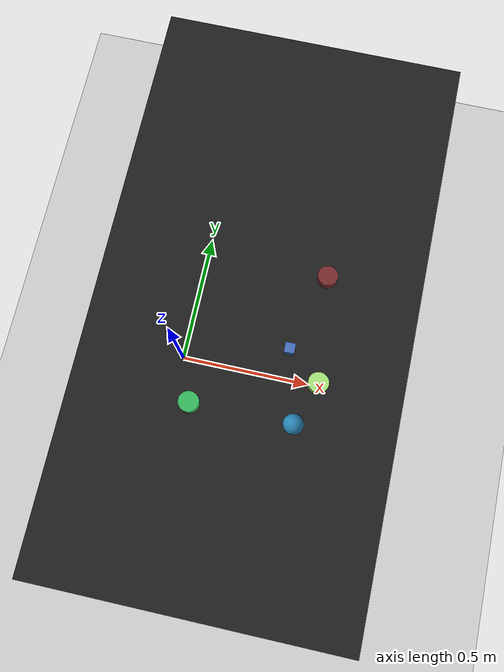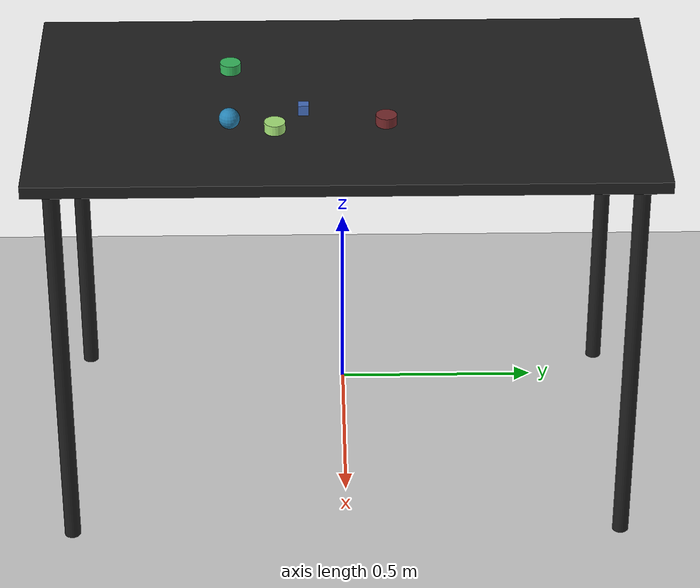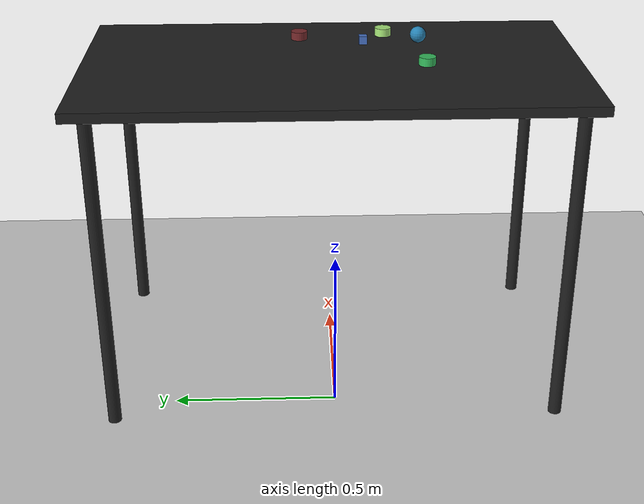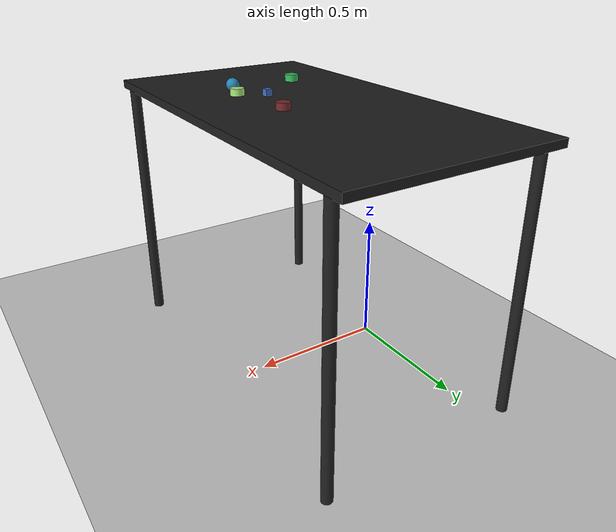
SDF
<?xml version="1.0" ?>
<sdf version="1.6">
  <world name="arm_world">
    <plugin filename="gz-sim-physics-system" name="gz::sim::systems::Physics">
      <engine>
        <filename>libgz-physics-bullet-featherstone-plugin.so</filename>
      </engine>
    </plugin>
    <plugin filename="gz-sim-user-commands-system" name="gz::sim::systems::UserCommands"/>
    <plugin filename="gz-sim-scene-broadcaster-system" name="gz::sim::systems::SceneBroadcaster"/>
    <plugin filename="gz-sim-sensors-system" name="gz::sim::systems::Sensors">
      <render_engine>ogre2</render_engine>
    </plugin>
    <gravity>0.0 0.0 -9.8</gravity>
    <scene>
      <shadows>false</shadows>
    </scene>
    <gui>
      <camera name="user_camera">
        <pose>0.75 -0.75 1.4 0 0.29 2.21</pose>
      </camera>
    </gui>
    <include>
      <uri>https://fuel.gazebosim.org/1.0/OpenRobotics/models/Sun</uri>
    </include>
    <model name="table">
      <static>true</static>
      <include>
        <uri>model://table</uri>
      </include>
      <pose>0.29 0 0 0 0 1.5708</pose>
    </model>
    <model name="ground_plane">
      <static>true</static>
      <link name="link">
        <collision name="collision">
          <geometry>
            <plane>
              <normal>0 0 1</normal>
            </plane>
          </geometry>
          <surface>
            <friction>
              <ode>
                <mu>1.0</mu>
                <mu2>1.0</mu2>
              </ode>
            </friction>
          </surface>
        </collision>
        <visual name="visual">
          <geometry>
            <plane>
              <normal>0 0 1</normal>
              <size>100 100</size>
            </plane>
          </geometry>
          <material>
            <ambient>0.8 0.8 0.8 1</ambient>
            <diffuse>0.8 0.8 0.8 1</diffuse>
            <specular>0.8 0.8 0.8 1</specular>
          </material>
        </visual>
      </link>
    </model>
    <model name="cylinder_m_0">
      <pose>0.191 -0.275 1.05 0 0 3.32</pose>
      <link name="cylinder_m_0_link">
        <inertial>
          <mass>0.05</mass>
          <inertia>
            <ixx>2.04e-7</ixx>
            <iyy>2.04e-7</iyy>
            <izz>3.9e-8</izz>
            <ixy>0</ixy>
            <ixz>0</ixz>
            <iyz>0</iyz>
          </inertia>
        </inertial>
        <collision name="cylinder_m_0_collision">
          <geometry>
            <cylinder>
              <radius>0.025</radius>
              <length>0.025</length>
            </cylinder>
          </geometry>
          <surface>
            <friction>
              <ode>
                <mu>0.8</mu>
                <mu2>0.8</mu2>
                <fdir1>0 0 1</fdir1>
                <slip1>0.001</slip1>
                <slip2>0.001</slip2>
              </ode>
              <torsional>
                <coefficient>0.1</coefficient>
                <surface_radius>0.015</surface_radius>
                <use_patch_radius>true</use_patch_radius>
              </torsional>
            </friction>
            <contact>
              <ode>
                <kp>1e5</kp>
                <kd>10</kd>
                <max_vel>0.1</max_vel>
                <min_depth>0.001</min_depth>
                <soft_cfm>0.01</soft_cfm>
                <soft_erp>0.2</soft_erp>
              </ode>
            </contact>
            <bounce>
              <restitution_coefficient>0.2</restitution_coefficient>
              <threshold>0.01</threshold>
            </bounce>
          </surface>
        </collision>
        <visual name="cylinder_m_0_visual">
          <geometry>
            <cylinder>
              <radius>0.025</radius>
              <length>0.025</length>
            </cylinder>
          </geometry>
          <material>
            <ambient>0.21 0.72 0.36 1</ambient>
            <diffuse>0.21 0.72 0.36 1</diffuse>
          </material>
        </visual>
        <velocity_decay>
          <linear>1</linear>
          <angular>1</angular>
        </velocity_decay>
      </link>
    </model>
    <model name="cylinder_m_1">
      <pose>0.45 0.096 1.05 0 0 5.72</pose>
      <link name="cylinder_m_1_link">
        <inertial>
          <mass>0.05</mass>
          <inertia>
            <ixx>2.04e-7</ixx>
            <iyy>2.04e-7</iyy>
            <izz>3.9e-8</izz>
            <ixy>0</ixy>
            <ixz>0</ixz>
            <iyz>0</iyz>
          </inertia>
        </inertial>
        <collision name="cylinder_m_1_collision">
          <geometry>
            <cylinder>
              <radius>0.025</radius>
              <length>0.025</length>
            </cylinder>
          </geometry>
          <surface>
            <friction>
              <ode>
                <mu>0.8</mu>
                <mu2>0.8</mu2>
                <fdir1>0 0 1</fdir1>
                <slip1>0.001</slip1>
                <slip2>0.001</slip2>
              </ode>
              <torsional>
                <coefficient>0.1</coefficient>
                <surface_radius>0.015</surface_radius>
                <use_patch_radius>true</use_patch_radius>
              </torsional>
            </friction>
            <contact>
              <ode>
                <kp>1e5</kp>
                <kd>10</kd>
                <max_vel>0.1</max_vel>
                <min_depth>0.001</min_depth>
                <soft_cfm>0.01</soft_cfm>
                <soft_erp>0.2</soft_erp>
              </ode>
            </contact>
            <bounce>
              <restitution_coefficient>0.2</restitution_coefficient>
              <threshold>0.01</threshold>
            </bounce>
          </surface>
        </collision>
        <visual name="cylinder_m_1_visual">
          <geometry>
            <cylinder>
              <radius>0.025</radius>
              <length>0.025</length>
            </cylinder>
          </geometry>
          <material>
            <ambient>0.46 0.16 0.17 1</ambient>
            <diffuse>0.46 0.16 0.17 1</diffuse>
          </material>
        </visual>
        <velocity_decay>
          <linear>1</linear>
          <angular>1</angular>
        </velocity_decay>
      </link>
    </model>
    <model name="sphere_m_2">
      <pose>0.441 -0.273 1.05 0 0 3.91</pose>
      <link name="sphere_m_2_link">
        <inertial>
          <mass>0.05</mass>
          <inertia>
            <ixx>2.04e-7</ixx>
            <iyy>2.04e-7</iyy>
            <izz>3.9e-8</izz>
            <ixy>0</ixy>
            <ixz>0</ixz>
            <iyz>0</iyz>
          </inertia>
        </inertial>
        <collision name="sphere_m_2_collision">
          <geometry>
            <sphere>
              <radius>0.025</radius>
            </sphere>
          </geometry>
          <surface>
            <friction>
              <ode>
                <mu>0.8</mu>
                <mu2>0.8</mu2>
                <fdir1>0 0 1</fdir1>
                <slip1>0.001</slip1>
                <slip2>0.001</slip2>
              </ode>
              <torsional>
                <coefficient>0.1</coefficient>
                <surface_radius>0.015</surface_radius>
                <use_patch_radius>true</use_patch_radius>
              </torsional>
            </friction>
            <contact>
              <ode>
                <kp>1e5</kp>
                <kd>10</kd>
                <max_vel>0.1</max_vel>
                <min_depth>0.001</min_depth>
                <soft_cfm>0.01</soft_cfm>
                <soft_erp>0.2</soft_erp>
              </ode>
            </contact>
            <bounce>
              <restitution_coefficient>0.2</restitution_coefficient>
              <threshold>0.01</threshold>
            </bounce>
          </surface>
        </collision>
        <visual name="sphere_m_2_visual">
          <geometry>
            <sphere>
              <radius>0.025</radius>
            </sphere>
          </geometry>
          <material>
            <ambient>0.15 0.51 0.7 1</ambient>
            <diffuse>0.15 0.51 0.7 1</diffuse>
          </material>
        </visual>
        <velocity_decay>
          <linear>1</linear>
          <angular>1</angular>
        </velocity_decay>
      </link>
    </model>
    <model name="cylinder_m_3">
      <pose>0.479 -0.166 1.05 0 0 0.58</pose>
      <link name="cylinder_m_3_link">
        <inertial>
          <mass>0.05</mass>
          <inertia>
            <ixx>2.04e-7</ixx>
            <iyy>2.04e-7</iyy>
            <izz>3.9e-8</izz>
            <ixy>0</ixy>
            <ixz>0</ixz>
            <iyz>0</iyz>
          </inertia>
        </inertial>
        <collision name="cylinder_m_3_collision">
          <geometry>
            <cylinder>
              <radius>0.025</radius>
              <length>0.025</length>
            </cylinder>
          </geometry>
          <surface>
            <friction>
              <ode>
                <mu>0.8</mu>
                <mu2>0.8</mu2>
                <fdir1>0 0 1</fdir1>
                <slip1>0.001</slip1>
                <slip2>0.001</slip2>
              </ode>
              <torsional>
                <coefficient>0.1</coefficient>
                <surface_radius>0.015</surface_radius>
                <use_patch_radius>true</use_patch_radius>
              </torsional>
            </friction>
            <contact>
              <ode>
                <kp>1e5</kp>
                <kd>10</kd>
                <max_vel>0.1</max_vel>
                <min_depth>0.001</min_depth>
                <soft_cfm>0.01</soft_cfm>
                <soft_erp>0.2</soft_erp>
              </ode>
            </contact>
            <bounce>
              <restitution_coefficient>0.2</restitution_coefficient>
              <threshold>0.01</threshold>
            </bounce>
          </surface>
        </collision>
        <visual name="cylinder_m_3_visual">
          <geometry>
            <cylinder>
              <radius>0.025</radius>
              <length>0.025</length>
            </cylinder>
          </geometry>
          <material>
            <ambient>0.65 0.89 0.47 1</ambient>
            <diffuse>0.65 0.89 0.47 1</diffuse>
          </material>
        </visual>
        <velocity_decay>
          <linear>1</linear>
          <angular>1</angular>
        </velocity_decay>
      </link>
    </model>
    <model name="cube_s_4">
      <pose>0.396 -0.099 1.05 0 0 4.72</pose>
      <link name="cube_s_4_link">
        <inertial>
          <mass>0.05</mass>
          <inertia>
            <ixx>2.04e-7</ixx>
            <iyy>2.04e-7</iyy>
            <izz>3.9e-8</izz>
            <ixy>0</ixy>
            <ixz>0</ixz>
            <iyz>0</iyz>
          </inertia>
        </inertial>
        <collision name="cube_s_4_collision">
          <geometry>
            <box>
              <size>0.025 0.025 0.025</size>
            </box>
          </geometry>
          <surface>
            <friction>
              <ode>
                <mu>0.8</mu>
                <mu2>0.8</mu2>
                <fdir1>0 0 1</fdir1>
                <slip1>0.001</slip1>
                <slip2>0.001</slip2>
              </ode>
              <torsional>
                <coefficient>0.1</coefficient>
                <surface_radius>0.015</surface_radius>
                <use_patch_radius>true</use_patch_radius>
              </torsional>
            </friction>
            <contact>
              <ode>
                <kp>1e5</kp>
                <kd>10</kd>
                <max_vel>0.1</max_vel>
                <min_depth>0.001</min_depth>
                <soft_cfm>0.01</soft_cfm>
                <soft_erp>0.2</soft_erp>
              </ode>
            </contact>
            <bounce>
              <restitution_coefficient>0.2</restitution_coefficient>
              <threshold>0.01</threshold>
            </bounce>
          </surface>
        </collision>
        <visual name="cube_s_4_visual">
          <geometry>
            <box>
              <size>0.025 0.025 0.025</size>
            </box>
          </geometry>
          <material>
            <ambient>0.27 0.43 0.74 1</ambient>
            <diffuse>0.27 0.43 0.74 1</diffuse>
          </material>
        </visual>
        <velocity_decay>
          <linear>1</linear>
          <angular>1</angular>
        </velocity_decay>
      </link>
    </model>
  </world>
</sdf>

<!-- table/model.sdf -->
<sdf version="1.5">
  <model name="table">
    <static>true</static>
    <link name="link">
      <collision name="surface">
        <pose>0 0 1.0 0 0 0</pose>
        <geometry>
          <box>
            <size>1.5 0.8 0.03</size>
          </box>
        </geometry>
        <surface>
          <friction>
            <ode>
              <mu>0.6</mu>
              <mu2>0.6</mu2>
            </ode>
          </friction>
        </surface>
      </collision>
      <visual name="surface">
        <pose>0 0 1.0 0 0 0</pose>
        <geometry>
          <box>
            <size>1.5 0.8 0.03</size>
          </box>
        </geometry>
        <material>
          <script>
            <uri>file://media/materials/scripts/gazebo.material</uri>
            <name>Gazebo/Black</name>
          </script>
        </material>
      </visual>
      <collision name="front_left_leg">
        <pose>0.68 0.38 0.5 0 0 0</pose>
        <geometry>
          <cylinder>
            <radius>0.02</radius>
            <length>1.0</length>
          </cylinder>
        </geometry>
      </collision>
      <visual name="front_left_leg">
        <pose>0.68 0.38 0.5 0 0 0</pose>
        <geometry>
          <cylinder>
            <radius>0.02</radius>
            <length>1.0</length>
          </cylinder>
        </geometry>
        <material>
          <script>
            <uri>file://media/materials/scripts/gazebo.material</uri>
            <name>Gazebo/Black</name>
          </script>
        </material>
      </visual>
      <collision name="front_right_leg">
        <pose>0.68 -0.38 0.5 0 0 0</pose>
        <geometry>
          <cylinder>
            <radius>0.02</radius>
            <length>1.0</length>
          </cylinder>
        </geometry>
      </collision>
      <visual name="front_right_leg">
        <pose>0.68 -0.38 0.5 0 0 0</pose>
        <geometry>
          <cylinder>
            <radius>0.02</radius>
            <length>1.0</length>
          </cylinder>
        </geometry>
        <material>
          <script>
            <uri>file://media/materials/scripts/gazebo.material</uri>
            <name>Gazebo/Black</name>
          </script>
        </material>
      </visual>
      <collision name="back_right_leg">
        <pose>-0.68 -0.38 0.5 0 0 0</pose>
        <geometry>
          <cylinder>
            <radius>0.02</radius>
            <length>1.0</length>
          </cylinder>
        </geometry>
      </collision>
      <visual name="back_right_leg">
        <pose>-0.68 -0.38 0.5 0 0 0</pose>
        <geometry>
          <cylinder>
            <radius>0.02</radius>
            <length>1.0</length>
          </cylinder>
        </geometry>
        <material>
          <script>
            <uri>file://media/materials/scripts/gazebo.material</uri>
            <name>Gazebo/Black</name>
          </script>
        </material>
      </visual>
      <collision name="back_left_leg">
        <pose>-0.68 0.38 0.5 0 0 0</pose>
        <geometry>
          <cylinder>
            <radius>0.02</radius>
            <length>1.0</length>
          </cylinder>
        </geometry>
      </collision>
      <visual name="back_left_leg">
        <pose>-0.68 0.38 0.5 0 0 0</pose>
        <geometry>
          <cylinder>
            <radius>0.02</radius>
            <length>1.0</length>
          </cylinder>
        </geometry>
        <material>
          <script>
            <uri>file://media/materials/scripts/gazebo.material</uri>
            <name>Gazebo/Black</name>
          </script>
        </material>
      </visual>
    </link>
  </model>
</sdf>
